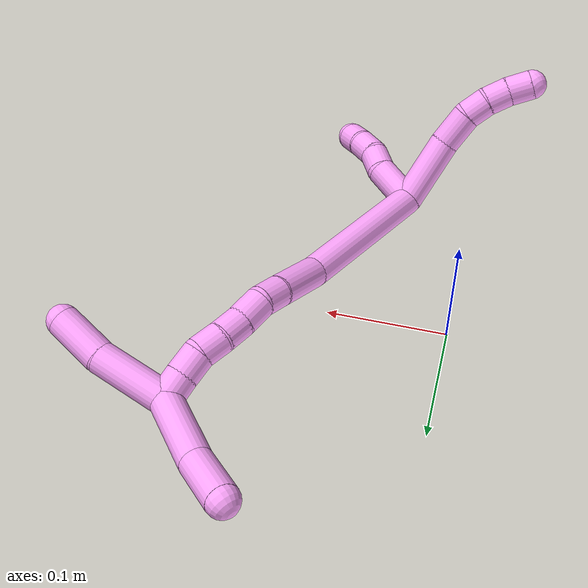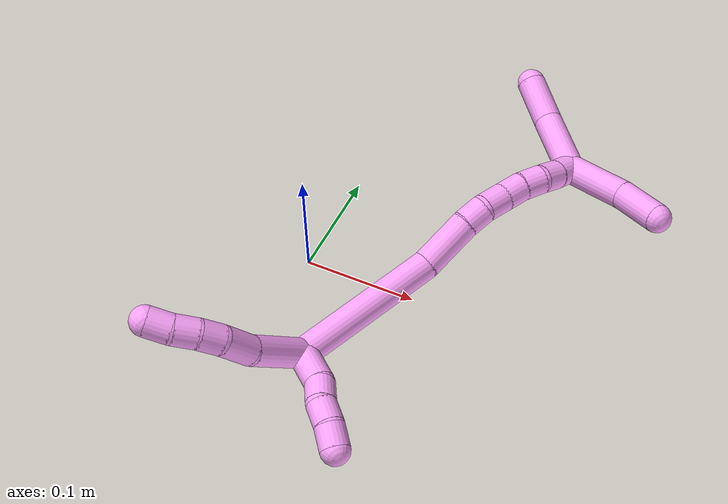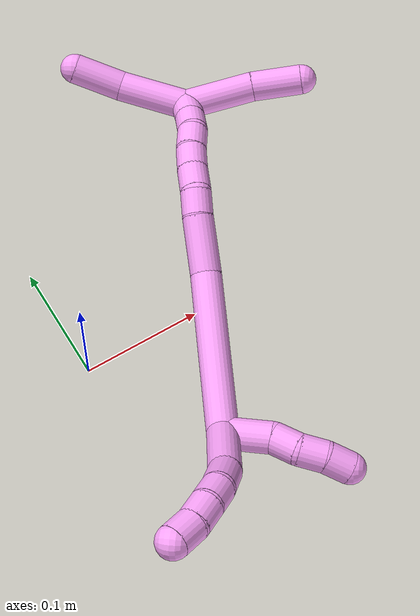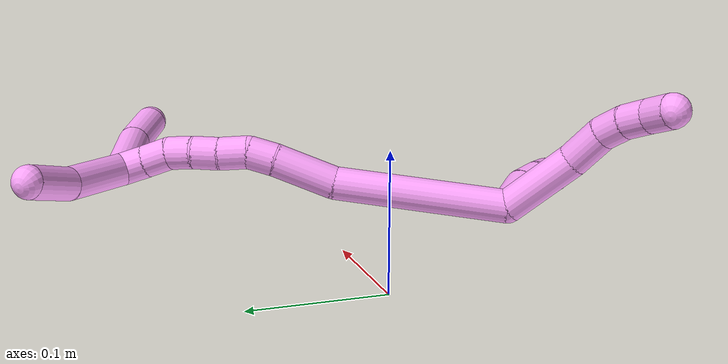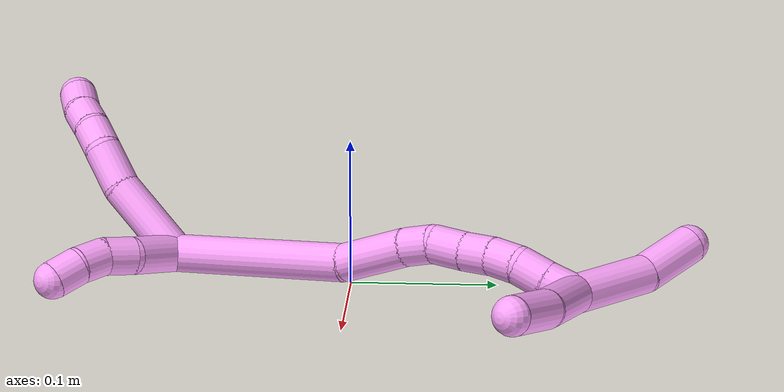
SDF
<sdf version="1.7">
 <world name="default">
  <model name="4">
   <static>0</static>
   <link name="4">
    <collision name="collision-cylinder-e_1_2_8">
     <pose>-0.026858 -0.010254 0.006085 1.03523 -1.15297 -0.70911</pose>
     <geometry><cylinder><radius>0.0125</radius><length>0.058771</length></cylinder></geometry>
     <surface>
      <friction><ode><mu>1.16</mu><mu2>1.16</mu2><slip1>0</slip1><slip2>0</slip2></ode></friction>
      <contact><ode><kp>1e+06</kp><kd>1</kd><max_vel>0</max_vel><min_depth>0.001</min_depth></ode></contact>
     </surface>
    </collision>
    <visual name="visual-cylinder-e_1_2_8">
     <pose>-0.026858 -0.010254 0.006085 1.03523 -1.15297 -0.70911</pose>
     <geometry><cylinder><radius>0.0125</radius><length>0.058771</length></cylinder></geometry>
     <material><ambient>1 0.65098 0.996078 1</ambient></material>
    </visual>
    <collision name="collision-cylinder-e_2_8_9">
     <pose>-0.068564 -0.023957 0.012523 1.46898 -1.34149 -1.24347</pose>
     <geometry><cylinder><radius>0.0125</radius><length>0.030496</length></cylinder></geometry>
     <surface>
      <friction><ode><mu>1.16</mu><mu2>1.16</mu2><slip1>0</slip1><slip2>0</slip2></ode></friction>
      <contact><ode><kp>1e+06</kp><kd>1</kd><max_vel>0</max_vel><min_depth>0.001</min_depth></ode></contact>
     </surface>
    </collision>
    <visual name="visual-cylinder-e_2_8_9">
     <pose>-0.068564 -0.023957 0.012523 1.46898 -1.34149 -1.24347</pose>
     <geometry><cylinder><radius>0.0125</radius><length>0.030496</length></cylinder></geometry>
     <material><ambient>1 0.65098 0.996078 1</ambient></material>
    </visual>
    <collision name="collision-cylinder-e_3_9_10">
     <pose>-0.092362 -0.031625 0.010941 2.0005 -1.09224 -1.51645</pose>
     <geometry><cylinder><radius>0.0125</radius><length>0.020164</length></cylinder></geometry>
     <surface>
      <friction><ode><mu>1.16</mu><mu2>1.16</mu2><slip1>0</slip1><slip2>0</slip2></ode></friction>
      <contact><ode><kp>1e+06</kp><kd>1</kd><max_vel>0</max_vel><min_depth>0.001</min_depth></ode></contact>
     </surface>
    </collision>
    <visual name="visual-cylinder-e_3_9_10">
     <pose>-0.092362 -0.031625 0.010941 2.0005 -1.09224 -1.51645</pose>
     <geometry><cylinder><radius>0.0125</radius><length>0.020164</length></cylinder></geometry>
     <material><ambient>1 0.65098 0.996078 1</ambient></material>
    </visual>
    <collision name="collision-cylinder-e_4_10_11">
     <pose>-0.109122 -0.041433 0.006059 2.05627 -0.890681 -1.33908</pose>
     <geometry><cylinder><radius>0.0125</radius><length>0.020091</length></cylinder></geometry>
     <surface>
      <friction><ode><mu>1.16</mu><mu2>1.16</mu2><slip1>0</slip1><slip2>0</slip2></ode></friction>
      <contact><ode><kp>1e+06</kp><kd>1</kd><max_vel>0</max_vel><min_depth>0.001</min_depth></ode></contact>
     </surface>
    </collision>
    <visual name="visual-cylinder-e_4_10_11">
     <pose>-0.109122 -0.041433 0.006059 2.05627 -0.890681 -1.33908</pose>
     <geometry><cylinder><radius>0.0125</radius><length>0.020091</length></cylinder></geometry>
     <material><ambient>1 0.65098 0.996078 1</ambient></material>
    </visual>
    <collision name="collision-cylinder-e_5_11_6">
     <pose>-0.124501 -0.051937 -0.001725 2.3479 -0.831901 -1.62339</pose>
     <geometry><cylinder><radius>0.0125</radius><length>0.020478</length></cylinder></geometry>
     <surface>
      <friction><ode><mu>1.16</mu><mu2>1.16</mu2><slip1>0</slip1><slip2>0</slip2></ode></friction>
      <contact><ode><kp>1e+06</kp><kd>1</kd><max_vel>0</max_vel><min_depth>0.001</min_depth></ode></contact>
     </surface>
    </collision>
    <visual name="visual-cylinder-e_5_11_6">
     <pose>-0.124501 -0.051937 -0.001725 2.3479 -0.831901 -1.62339</pose>
     <geometry><cylinder><radius>0.0125</radius><length>0.020478</length></cylinder></geometry>
     <material><ambient>1 0.65098 0.996078 1</ambient></material>
    </visual>
    <collision name="collision-cylinder-e_1_2_12">
     <pose>-0.000719 -0.000118 0.019259 0.006152 -0.037323 -0.000115</pose>
     <geometry><cylinder><radius>0.0125</radius><length>0.038546</length></cylinder></geometry>
     <surface>
      <friction><ode><mu>1.16</mu><mu2>1.16</mu2><slip1>0</slip1><slip2>0</slip2></ode></friction>
      <contact><ode><kp>1e+06</kp><kd>1</kd><max_vel>0</max_vel><min_depth>0.001</min_depth></ode></contact>
     </surface>
    </collision>
    <visual name="visual-cylinder-e_1_2_12">
     <pose>-0.000719 -0.000118 0.019259 0.006152 -0.037323 -0.000115</pose>
     <geometry><cylinder><radius>0.0125</radius><length>0.038546</length></cylinder></geometry>
     <material><ambient>1 0.65098 0.996078 1</ambient></material>
    </visual>
    <collision name="collision-cylinder-e_2_12_13">
     <pose>-0.00308 -0.003445 0.048243 0.318601 -0.158935 -0.025587</pose>
     <geometry><cylinder><radius>0.0125</radius><length>0.020742</length></cylinder></geometry>
     <surface>
      <friction><ode><mu>1.16</mu><mu2>1.16</mu2><slip1>0</slip1><slip2>0</slip2></ode></friction>
      <contact><ode><kp>1e+06</kp><kd>1</kd><max_vel>0</max_vel><min_depth>0.001</min_depth></ode></contact>
     </surface>
    </collision>
    <visual name="visual-cylinder-e_2_12_13">
     <pose>-0.00308 -0.003445 0.048243 0.318601 -0.158935 -0.025587</pose>
     <geometry><cylinder><radius>0.0125</radius><length>0.020742</length></cylinder></geometry>
     <material><ambient>1 0.65098 0.996078 1</ambient></material>
    </visual>
    <collision name="collision-cylinder-e_3_13_14">
     <pose>-0.003088 -0.008696 0.067898 0.203041 0.159754 0.016309</pose>
     <geometry><cylinder><radius>0.0125</radius><length>0.020536</length></cylinder></geometry>
     <surface>
      <friction><ode><mu>1.16</mu><mu2>1.16</mu2><slip1>0</slip1><slip2>0</slip2></ode></friction>
      <contact><ode><kp>1e+06</kp><kd>1</kd><max_vel>0</max_vel><min_depth>0.001</min_depth></ode></contact>
     </surface>
    </collision>
    <visual name="visual-cylinder-e_3_13_14">
     <pose>-0.003088 -0.008696 0.067898 0.203041 0.159754 0.016309</pose>
     <geometry><cylinder><radius>0.0125</radius><length>0.020536</length></cylinder></geometry>
     <material><ambient>1 0.65098 0.996078 1</ambient></material>
    </visual>
    <collision name="collision-cylinder-e_4_14_5">
     <pose>0.001433 -0.014457 0.086749 0.394691 0.290244 0.058428</pose>
     <geometry><cylinder><radius>0.0125</radius><length>0.020176</length></cylinder></geometry>
     <surface>
      <friction><ode><mu>1.16</mu><mu2>1.16</mu2><slip1>0</slip1><slip2>0</slip2></ode></friction>
      <contact><ode><kp>1e+06</kp><kd>1</kd><max_vel>0</max_vel><min_depth>0.001</min_depth></ode></contact>
     </surface>
    </collision>
    <visual name="visual-cylinder-e_4_14_5">
     <pose>0.001433 -0.014457 0.086749 0.394691 0.290244 0.058428</pose>
     <geometry><cylinder><radius>0.0125</radius><length>0.020176</length></cylinder></geometry>
     <material><ambient>1 0.65098 0.996078 1</ambient></material>
    </visual>
    <collision name="collision-cylinder-e_1_2_15">
     <pose>0.023586 0.058488 -0.014536 -1.81439 0.373029 -0.47364</pose>
     <geometry><cylinder><radius>0.0125</radius><length>0.129436</length></cylinder></geometry>
     <surface>
      <friction><ode><mu>1.16</mu><mu2>1.16</mu2><slip1>0</slip1><slip2>0</slip2></ode></friction>
      <contact><ode><kp>1e+06</kp><kd>1</kd><max_vel>0</max_vel><min_depth>0.001</min_depth></ode></contact>
     </surface>
    </collision>
    <visual name="visual-cylinder-e_1_2_15">
     <pose>0.023586 0.058488 -0.014536 -1.81439 0.373029 -0.47364</pose>
     <geometry><cylinder><radius>0.0125</radius><length>0.129436</length></cylinder></geometry>
     <material><ambient>1 0.65098 0.996078 1</ambient></material>
    </visual>
    <collision name="collision-cylinder-e_2_15_16">
     <pose>0.049735 0.139958 -0.03435 -1.79651 0.10828 -0.135886</pose>
     <geometry><cylinder><radius>0.0125</radius><length>0.047438</length></cylinder></geometry>
     <surface>
      <friction><ode><mu>1.16</mu><mu2>1.16</mu2><slip1>0</slip1><slip2>0</slip2></ode></friction>
      <contact><ode><kp>1e+06</kp><kd>1</kd><max_vel>0</max_vel><min_depth>0.001</min_depth></ode></contact>
     </surface>
    </collision>
    <visual name="visual-cylinder-e_2_15_16">
     <pose>0.049735 0.139958 -0.03435 -1.79651 0.10828 -0.135886</pose>
     <geometry><cylinder><radius>0.0125</radius><length>0.047438</length></cylinder></geometry>
     <material><ambient>1 0.65098 0.996078 1</ambient></material>
    </visual>
    <collision name="collision-cylinder-e_3_16_17">
     <pose>0.054659 0.172887 -0.041525 -1.75938 0.229009 -0.276295</pose>
     <geometry><cylinder><radius>0.0125</radius><length>0.020796</length></cylinder></geometry>
     <surface>
      <friction><ode><mu>1.16</mu><mu2>1.16</mu2><slip1>0</slip1><slip2>0</slip2></ode></friction>
      <contact><ode><kp>1e+06</kp><kd>1</kd><max_vel>0</max_vel><min_depth>0.001</min_depth></ode></contact>
     </surface>
    </collision>
    <visual name="visual-cylinder-e_3_16_17">
     <pose>0.054659 0.172887 -0.041525 -1.75938 0.229009 -0.276295</pose>
     <geometry><cylinder><radius>0.0125</radius><length>0.020796</length></cylinder></geometry>
     <material><ambient>1 0.65098 0.996078 1</ambient></material>
    </visual>
    <collision name="collision-cylinder-e_4_17_18">
     <pose>0.06278 0.191877 -0.046475 -1.89628 0.54306 -0.739877</pose>
     <geometry><cylinder><radius>0.0125</radius><length>0.022294</length></cylinder></geometry>
     <surface>
      <friction><ode><mu>1.16</mu><mu2>1.16</mu2><slip1>0</slip1><slip2>0</slip2></ode></friction>
      <contact><ode><kp>1e+06</kp><kd>1</kd><max_vel>0</max_vel><min_depth>0.001</min_depth></ode></contact>
     </surface>
    </collision>
    <visual name="visual-cylinder-e_4_17_18">
     <pose>0.06278 0.191877 -0.046475 -1.89628 0.54306 -0.739877</pose>
     <geometry><cylinder><radius>0.0125</radius><length>0.022294</length></cylinder></geometry>
     <material><ambient>1 0.65098 0.996078 1</ambient></material>
    </visual>
    <collision name="collision-cylinder-e_5_18_19">
     <pose>0.073125 0.209579 -0.051567 -1.80216 0.475822 -0.594404</pose>
     <geometry><cylinder><radius>0.0125</radius><length>0.020018</length></cylinder></geometry>
     <surface>
      <friction><ode><mu>1.16</mu><mu2>1.16</mu2><slip1>0</slip1><slip2>0</slip2></ode></friction>
      <contact><ode><kp>1e+06</kp><kd>1</kd><max_vel>0</max_vel><min_depth>0.001</min_depth></ode></contact>
     </surface>
    </collision>
    <visual name="visual-cylinder-e_5_18_19">
     <pose>0.073125 0.209579 -0.051567 -1.80216 0.475822 -0.594404</pose>
     <geometry><cylinder><radius>0.0125</radius><length>0.020018</length></cylinder></geometry>
     <material><ambient>1 0.65098 0.996078 1</ambient></material>
    </visual>
    <collision name="collision-cylinder-e_6_19_20">
     <pose>0.083348 0.22644 -0.054618 -1.69344 0.598811 -0.671695</pose>
     <geometry><cylinder><radius>0.0125</radius><length>0.020007</length></cylinder></geometry>
     <surface>
      <friction><ode><mu>1.16</mu><mu2>1.16</mu2><slip1>0</slip1><slip2>0</slip2></ode></friction>
      <contact><ode><kp>1e+06</kp><kd>1</kd><max_vel>0</max_vel><min_depth>0.001</min_depth></ode></contact>
     </surface>
    </collision>
    <visual name="visual-cylinder-e_6_19_20">
     <pose>0.083348 0.22644 -0.054618 -1.69344 0.598811 -0.671695</pose>
     <geometry><cylinder><radius>0.0125</radius><length>0.020007</length></cylinder></geometry>
     <material><ambient>1 0.65098 0.996078 1</ambient></material>
    </visual>
    <collision name="collision-cylinder-e_7_20_21">
     <pose>0.096217 0.240894 -0.058571 -2.0105 0.808003 -1.18554</pose>
     <geometry><cylinder><radius>0.0125</radius><length>0.020004</length></cylinder></geometry>
     <surface>
      <friction><ode><mu>1.16</mu><mu2>1.16</mu2><slip1>0</slip1><slip2>0</slip2></ode></friction>
      <contact><ode><kp>1e+06</kp><kd>1</kd><max_vel>0</max_vel><min_depth>0.001</min_depth></ode></contact>
     </surface>
    </collision>
    <visual name="visual-cylinder-e_7_20_21">
     <pose>0.096217 0.240894 -0.058571 -2.0105 0.808003 -1.18554</pose>
     <geometry><cylinder><radius>0.0125</radius><length>0.020004</length></cylinder></geometry>
     <material><ambient>1 0.65098 0.996078 1</ambient></material>
    </visual>
    <collision name="collision-cylinder-e_8_21_1">
     <pose>0.110301 0.253532 -0.065026 -2.07386 0.754739 -1.18134</pose>
     <geometry><cylinder><radius>0.0125</radius><length>0.020006</length></cylinder></geometry>
     <surface>
      <friction><ode><mu>1.16</mu><mu2>1.16</mu2><slip1>0</slip1><slip2>0</slip2></ode></friction>
      <contact><ode><kp>1e+06</kp><kd>1</kd><max_vel>0</max_vel><min_depth>0.001</min_depth></ode></contact>
     </surface>
    </collision>
    <visual name="visual-cylinder-e_8_21_1">
     <pose>0.110301 0.253532 -0.065026 -2.07386 0.754739 -1.18134</pose>
     <geometry><cylinder><radius>0.0125</radius><length>0.020006</length></cylinder></geometry>
     <material><ambient>1 0.65098 0.996078 1</ambient></material>
    </visual>
    <collision name="collision-cylinder-e_1_1_22">
     <pose>0.122184 0.269301 -0.041443 -0.333426 0.173645 -0.029292</pose>
     <geometry><cylinder><radius>0.0125</radius><length>0.058225</length></cylinder></geometry>
     <surface>
      <friction><ode><mu>1.16</mu><mu2>1.16</mu2><slip1>0</slip1><slip2>0</slip2></ode></friction>
      <contact><ode><kp>1e+06</kp><kd>1</kd><max_vel>0</max_vel><min_depth>0.001</min_depth></ode></contact>
     </surface>
    </collision>
    <visual name="visual-cylinder-e_1_1_22">
     <pose>0.122184 0.269301 -0.041443 -0.333426 0.173645 -0.029292</pose>
     <geometry><cylinder><radius>0.0125</radius><length>0.058225</length></cylinder></geometry>
     <material><ambient>1 0.65098 0.996078 1</ambient></material>
    </visual>
    <collision name="collision-cylinder-e_2_22_4">
     <pose>0.12843 0.282606 0.006133 -0.18914 0.05827 -0.005529</pose>
     <geometry><cylinder><radius>0.0125</radius><length>0.041775</length></cylinder></geometry>
     <surface>
      <friction><ode><mu>1.16</mu><mu2>1.16</mu2><slip1>0</slip1><slip2>0</slip2></ode></friction>
      <contact><ode><kp>1e+06</kp><kd>1</kd><max_vel>0</max_vel><min_depth>0.001</min_depth></ode></contact>
     </surface>
    </collision>
    <visual name="visual-cylinder-e_2_22_4">
     <pose>0.12843 0.282606 0.006133 -0.18914 0.05827 -0.005529</pose>
     <geometry><cylinder><radius>0.0125</radius><length>0.041775</length></cylinder></geometry>
     <material><ambient>1 0.65098 0.996078 1</ambient></material>
    </visual>
    <collision name="collision-cylinder-e_1_1_23">
     <pose>0.115228 0.266551 -0.09668 -2.91003 -0.066516 0.557259</pose>
     <geometry><cylinder><radius>0.0125</radius><length>0.057955</length></cylinder></geometry>
     <surface>
      <friction><ode><mu>1.16</mu><mu2>1.16</mu2><slip1>0</slip1><slip2>0</slip2></ode></friction>
      <contact><ode><kp>1e+06</kp><kd>1</kd><max_vel>0</max_vel><min_depth>0.001</min_depth></ode></contact>
     </surface>
    </collision>
    <visual name="visual-cylinder-e_1_1_23">
     <pose>0.115228 0.266551 -0.09668 -2.91003 -0.066516 0.557259</pose>
     <geometry><cylinder><radius>0.0125</radius><length>0.057955</length></cylinder></geometry>
     <material><ambient>1 0.65098 0.996078 1</ambient></material>
    </visual>
    <collision name="collision-cylinder-e_2_23_3">
     <pose>0.107045 0.279059 -0.144014 -2.84466 -0.302221 1.58873</pose>
     <geometry><cylinder><radius>0.0125</radius><length>0.042045</length></cylinder></geometry>
     <surface>
      <friction><ode><mu>1.16</mu><mu2>1.16</mu2><slip1>0</slip1><slip2>0</slip2></ode></friction>
      <contact><ode><kp>1e+06</kp><kd>1</kd><max_vel>0</max_vel><min_depth>0.001</min_depth></ode></contact>
     </surface>
    </collision>
    <visual name="visual-cylinder-e_2_23_3">
     <pose>0.107045 0.279059 -0.144014 -2.84466 -0.302221 1.58873</pose>
     <geometry><cylinder><radius>0.0125</radius><length>0.042045</length></cylinder></geometry>
     <material><ambient>1 0.65098 0.996078 1</ambient></material>
    </visual>
    <collision name="collision-sphere-3">
     <pose>0.100787 0.284931 -0.163205 0 -0 0</pose>
     <geometry><sphere><radius>0.0125</radius></sphere></geometry>
     <surface>
      <friction><ode><mu>1.16</mu><mu2>1.16</mu2><slip1>0</slip1><slip2>0</slip2></ode></friction>
      <contact><ode><kp>1e+06</kp><kd>1</kd><max_vel>0</max_vel><min_depth>0.001</min_depth></ode></contact>
     </surface>
    </collision>
    <visual name="visual-sphere-3">
     <pose>0.100787 0.284931 -0.163205 0 -0 0</pose>
     <geometry><sphere><radius>0.0125</radius></sphere></geometry>
     <material><ambient>1 0.65098 0.996078 1</ambient></material>
    </visual>
    <collision name="collision-sphere-23">
     <pose>0.113302 0.273187 -0.124822 0 -0 0</pose>
     <geometry><sphere><radius>0.0125</radius></sphere></geometry>
     <surface>
      <friction><ode><mu>1.16</mu><mu2>1.16</mu2><slip1>0</slip1><slip2>0</slip2></ode></friction>
      <contact><ode><kp>1e+06</kp><kd>1</kd><max_vel>0</max_vel><min_depth>0.001</min_depth></ode></contact>
     </surface>
    </collision>
    <visual name="visual-sphere-23">
     <pose>0.113302 0.273187 -0.124822 0 -0 0</pose>
     <geometry><sphere><radius>0.0125</radius></sphere></geometry>
     <material><ambient>1 0.65098 0.996078 1</ambient></material>
    </visual>
    <collision name="collision-sphere-4">
     <pose>0.129647 0.286526 0.026612 0 -0 0</pose>
     <geometry><sphere><radius>0.0125</radius></sphere></geometry>
     <surface>
      <friction><ode><mu>1.16</mu><mu2>1.16</mu2><slip1>0</slip1><slip2>0</slip2></ode></friction>
      <contact><ode><kp>1e+06</kp><kd>1</kd><max_vel>0</max_vel><min_depth>0.001</min_depth></ode></contact>
     </surface>
    </collision>
    <visual name="visual-sphere-4">
     <pose>0.129647 0.286526 0.026612 0 -0 0</pose>
     <geometry><sphere><radius>0.0125</radius></sphere></geometry>
     <material><ambient>1 0.65098 0.996078 1</ambient></material>
    </visual>
    <collision name="collision-sphere-22">
     <pose>0.127214 0.278685 -0.014347 0 -0 0</pose>
     <geometry><sphere><radius>0.0125</radius></sphere></geometry>
     <surface>
      <friction><ode><mu>1.16</mu><mu2>1.16</mu2><slip1>0</slip1><slip2>0</slip2></ode></friction>
      <contact><ode><kp>1e+06</kp><kd>1</kd><max_vel>0</max_vel><min_depth>0.001</min_depth></ode></contact>
     </surface>
    </collision>
    <visual name="visual-sphere-22">
     <pose>0.127214 0.278685 -0.014347 0 -0 0</pose>
     <geometry><sphere><radius>0.0125</radius></sphere></geometry>
     <material><ambient>1 0.65098 0.996078 1</ambient></material>
    </visual>
    <collision name="collision-sphere-1">
     <pose>0.117154 0.259916 -0.068539 0 -0 0</pose>
     <geometry><sphere><radius>0.0125</radius></sphere></geometry>
     <surface>
      <friction><ode><mu>1.16</mu><mu2>1.16</mu2><slip1>0</slip1><slip2>0</slip2></ode></friction>
      <contact><ode><kp>1e+06</kp><kd>1</kd><max_vel>0</max_vel><min_depth>0.001</min_depth></ode></contact>
     </surface>
    </collision>
    <visual name="visual-sphere-1">
     <pose>0.117154 0.259916 -0.068539 0 -0 0</pose>
     <geometry><sphere><radius>0.0125</radius></sphere></geometry>
     <material><ambient>1 0.65098 0.996078 1</ambient></material>
    </visual>
    <collision name="collision-sphere-21">
     <pose>0.103448 0.247148 -0.061513 0 -0 0</pose>
     <geometry><sphere><radius>0.0125</radius></sphere></geometry>
     <surface>
      <friction><ode><mu>1.16</mu><mu2>1.16</mu2><slip1>0</slip1><slip2>0</slip2></ode></friction>
      <contact><ode><kp>1e+06</kp><kd>1</kd><max_vel>0</max_vel><min_depth>0.001</min_depth></ode></contact>
     </surface>
    </collision>
    <visual name="visual-sphere-21">
     <pose>0.103448 0.247148 -0.061513 0 -0 0</pose>
     <geometry><sphere><radius>0.0125</radius></sphere></geometry>
     <material><ambient>1 0.65098 0.996078 1</ambient></material>
    </visual>
    <collision name="collision-sphere-6">
     <pose>-0.13207 -0.056853 -0.00656 0 -0 0</pose>
     <geometry><sphere><radius>0.0125</radius></sphere></geometry>
     <surface>
      <friction><ode><mu>1.16</mu><mu2>1.16</mu2><slip1>0</slip1><slip2>0</slip2></ode></friction>
      <contact><ode><kp>1e+06</kp><kd>1</kd><max_vel>0</max_vel><min_depth>0.001</min_depth></ode></contact>
     </surface>
    </collision>
    <visual name="visual-sphere-6">
     <pose>-0.13207 -0.056853 -0.00656 0 -0 0</pose>
     <geometry><sphere><radius>0.0125</radius></sphere></geometry>
     <material><ambient>1 0.65098 0.996078 1</ambient></material>
    </visual>
    <collision name="collision-sphere-11">
     <pose>-0.116932 -0.047021 0.003111 0 -0 0</pose>
     <geometry><sphere><radius>0.0125</radius></sphere></geometry>
     <surface>
      <friction><ode><mu>1.16</mu><mu2>1.16</mu2><slip1>0</slip1><slip2>0</slip2></ode></friction>
      <contact><ode><kp>1e+06</kp><kd>1</kd><max_vel>0</max_vel><min_depth>0.001</min_depth></ode></contact>
     </surface>
    </collision>
    <visual name="visual-sphere-11">
     <pose>-0.116932 -0.047021 0.003111 0 -0 0</pose>
     <geometry><sphere><radius>0.0125</radius></sphere></geometry>
     <material><ambient>1 0.65098 0.996078 1</ambient></material>
    </visual>
    <collision name="collision-sphere-10">
     <pose>-0.101312 -0.035846 0.009007 0 -0 0</pose>
     <geometry><sphere><radius>0.0125</radius></sphere></geometry>
     <surface>
      <friction><ode><mu>1.16</mu><mu2>1.16</mu2><slip1>0</slip1><slip2>0</slip2></ode></friction>
      <contact><ode><kp>1e+06</kp><kd>1</kd><max_vel>0</max_vel><min_depth>0.001</min_depth></ode></contact>
     </surface>
    </collision>
    <visual name="visual-sphere-10">
     <pose>-0.101312 -0.035846 0.009007 0 -0 0</pose>
     <geometry><sphere><radius>0.0125</radius></sphere></geometry>
     <material><ambient>1 0.65098 0.996078 1</ambient></material>
    </visual>
    <collision name="collision-sphere-9">
     <pose>-0.083413 -0.027405 0.012875 0 -0 0</pose>
     <geometry><sphere><radius>0.0125</radius></sphere></geometry>
     <surface>
      <friction><ode><mu>1.16</mu><mu2>1.16</mu2><slip1>0</slip1><slip2>0</slip2></ode></friction>
      <contact><ode><kp>1e+06</kp><kd>1</kd><max_vel>0</max_vel><min_depth>0.001</min_depth></ode></contact>
     </surface>
    </collision>
    <visual name="visual-sphere-9">
     <pose>-0.083413 -0.027405 0.012875 0 -0 0</pose>
     <geometry><sphere><radius>0.0125</radius></sphere></geometry>
     <material><ambient>1 0.65098 0.996078 1</ambient></material>
    </visual>
    <collision name="collision-sphere-2">
     <geometry><sphere><radius>0.0125</radius></sphere></geometry>
     <surface>
      <friction><ode><mu>1.16</mu><mu2>1.16</mu2><slip1>0</slip1><slip2>0</slip2></ode></friction>
      <contact><ode><kp>1e+06</kp><kd>1</kd><max_vel>0</max_vel><min_depth>0.001</min_depth></ode></contact>
     </surface>
    </collision>
    <visual name="visual-sphere-2">
     <geometry><sphere><radius>0.0125</radius></sphere></geometry>
     <material><ambient>1 0.65098 0.996078 1</ambient></material>
    </visual>
    <collision name="collision-sphere-19">
     <pose>0.077709 0.218239 -0.053607 0 -0 0</pose>
     <geometry><sphere><radius>0.0125</radius></sphere></geometry>
     <surface>
      <friction><ode><mu>1.16</mu><mu2>1.16</mu2><slip1>0</slip1><slip2>0</slip2></ode></friction>
      <contact><ode><kp>1e+06</kp><kd>1</kd><max_vel>0</max_vel><min_depth>0.001</min_depth></ode></contact>
     </surface>
    </collision>
    <visual name="visual-sphere-19">
     <pose>0.077709 0.218239 -0.053607 0 -0 0</pose>
     <geometry><sphere><radius>0.0125</radius></sphere></geometry>
     <material><ambient>1 0.65098 0.996078 1</ambient></material>
    </visual>
    <collision name="collision-sphere-8">
     <pose>-0.053716 -0.020509 0.01217 0 -0 0</pose>
     <geometry><sphere><radius>0.0125</radius></sphere></geometry>
     <surface>
      <friction><ode><mu>1.16</mu><mu2>1.16</mu2><slip1>0</slip1><slip2>0</slip2></ode></friction>
      <contact><ode><kp>1e+06</kp><kd>1</kd><max_vel>0</max_vel><min_depth>0.001</min_depth></ode></contact>
     </surface>
    </collision>
    <visual name="visual-sphere-8">
     <pose>-0.053716 -0.020509 0.01217 0 -0 0</pose>
     <geometry><sphere><radius>0.0125</radius></sphere></geometry>
     <material><ambient>1 0.65098 0.996078 1</ambient></material>
    </visual>
    <collision name="collision-sphere-12">
     <pose>-0.001438 -0.000237 0.038519 0 -0 0</pose>
     <geometry><sphere><radius>0.0125</radius></sphere></geometry>
     <surface>
      <friction><ode><mu>1.16</mu><mu2>1.16</mu2><slip1>0</slip1><slip2>0</slip2></ode></friction>
      <contact><ode><kp>1e+06</kp><kd>1</kd><max_vel>0</max_vel><min_depth>0.001</min_depth></ode></contact>
     </surface>
    </collision>
    <visual name="visual-sphere-12">
     <pose>-0.001438 -0.000237 0.038519 0 -0 0</pose>
     <geometry><sphere><radius>0.0125</radius></sphere></geometry>
     <material><ambient>1 0.65098 0.996078 1</ambient></material>
    </visual>
    <collision name="collision-sphere-13">
     <pose>-0.004721 -0.006652 0.057968 0 -0 0</pose>
     <geometry><sphere><radius>0.0125</radius></sphere></geometry>
     <surface>
      <friction><ode><mu>1.16</mu><mu2>1.16</mu2><slip1>0</slip1><slip2>0</slip2></ode></friction>
      <contact><ode><kp>1e+06</kp><kd>1</kd><max_vel>0</max_vel><min_depth>0.001</min_depth></ode></contact>
     </surface>
    </collision>
    <visual name="visual-sphere-13">
     <pose>-0.004721 -0.006652 0.057968 0 -0 0</pose>
     <geometry><sphere><radius>0.0125</radius></sphere></geometry>
     <material><ambient>1 0.65098 0.996078 1</ambient></material>
    </visual>
    <collision name="collision-sphere-14">
     <pose>-0.001454 -0.010741 0.077827 0 -0 0</pose>
     <geometry><sphere><radius>0.0125</radius></sphere></geometry>
     <surface>
      <friction><ode><mu>1.16</mu><mu2>1.16</mu2><slip1>0</slip1><slip2>0</slip2></ode></friction>
      <contact><ode><kp>1e+06</kp><kd>1</kd><max_vel>0</max_vel><min_depth>0.001</min_depth></ode></contact>
     </surface>
    </collision>
    <visual name="visual-sphere-14">
     <pose>-0.001454 -0.010741 0.077827 0 -0 0</pose>
     <geometry><sphere><radius>0.0125</radius></sphere></geometry>
     <material><ambient>1 0.65098 0.996078 1</ambient></material>
    </visual>
    <collision name="collision-sphere-5">
     <pose>0.00432 -0.018174 0.095672 0 -0 0</pose>
     <geometry><sphere><radius>0.0125</radius></sphere></geometry>
     <surface>
      <friction><ode><mu>1.16</mu><mu2>1.16</mu2><slip1>0</slip1><slip2>0</slip2></ode></friction>
      <contact><ode><kp>1e+06</kp><kd>1</kd><max_vel>0</max_vel><min_depth>0.001</min_depth></ode></contact>
     </surface>
    </collision>
    <visual name="visual-sphere-5">
     <pose>0.00432 -0.018174 0.095672 0 -0 0</pose>
     <geometry><sphere><radius>0.0125</radius></sphere></geometry>
     <material><ambient>1 0.65098 0.996078 1</ambient></material>
    </visual>
    <collision name="collision-sphere-15">
     <pose>0.047172 0.116976 -0.029072 0 -0 0</pose>
     <geometry><sphere><radius>0.0125</radius></sphere></geometry>
     <surface>
      <friction><ode><mu>1.16</mu><mu2>1.16</mu2><slip1>0</slip1><slip2>0</slip2></ode></friction>
      <contact><ode><kp>1e+06</kp><kd>1</kd><max_vel>0</max_vel><min_depth>0.001</min_depth></ode></contact>
     </surface>
    </collision>
    <visual name="visual-sphere-15">
     <pose>0.047172 0.116976 -0.029072 0 -0 0</pose>
     <geometry><sphere><radius>0.0125</radius></sphere></geometry>
     <material><ambient>1 0.65098 0.996078 1</ambient></material>
    </visual>
    <collision name="collision-sphere-16">
     <pose>0.052298 0.16294 -0.039627 0 -0 0</pose>
     <geometry><sphere><radius>0.0125</radius></sphere></geometry>
     <surface>
      <friction><ode><mu>1.16</mu><mu2>1.16</mu2><slip1>0</slip1><slip2>0</slip2></ode></friction>
      <contact><ode><kp>1e+06</kp><kd>1</kd><max_vel>0</max_vel><min_depth>0.001</min_depth></ode></contact>
     </surface>
    </collision>
    <visual name="visual-sphere-16">
     <pose>0.052298 0.16294 -0.039627 0 -0 0</pose>
     <geometry><sphere><radius>0.0125</radius></sphere></geometry>
     <material><ambient>1 0.65098 0.996078 1</ambient></material>
    </visual>
    <collision name="collision-sphere-17">
     <pose>0.057019 0.182835 -0.043424 0 -0 0</pose>
     <geometry><sphere><radius>0.0125</radius></sphere></geometry>
     <surface>
      <friction><ode><mu>1.16</mu><mu2>1.16</mu2><slip1>0</slip1><slip2>0</slip2></ode></friction>
      <contact><ode><kp>1e+06</kp><kd>1</kd><max_vel>0</max_vel><min_depth>0.001</min_depth></ode></contact>
     </surface>
    </collision>
    <visual name="visual-sphere-17">
     <pose>0.057019 0.182835 -0.043424 0 -0 0</pose>
     <geometry><sphere><radius>0.0125</radius></sphere></geometry>
     <material><ambient>1 0.65098 0.996078 1</ambient></material>
    </visual>
    <collision name="collision-sphere-18">
     <pose>0.06854 0.200919 -0.049527 0 -0 0</pose>
     <geometry><sphere><radius>0.0125</radius></sphere></geometry>
     <surface>
      <friction><ode><mu>1.16</mu><mu2>1.16</mu2><slip1>0</slip1><slip2>0</slip2></ode></friction>
      <contact><ode><kp>1e+06</kp><kd>1</kd><max_vel>0</max_vel><min_depth>0.001</min_depth></ode></contact>
     </surface>
    </collision>
    <visual name="visual-sphere-18">
     <pose>0.06854 0.200919 -0.049527 0 -0 0</pose>
     <geometry><sphere><radius>0.0125</radius></sphere></geometry>
     <material><ambient>1 0.65098 0.996078 1</ambient></material>
    </visual>
    <collision name="collision-sphere-20">
     <pose>0.088986 0.234641 -0.055629 0 -0 0</pose>
     <geometry><sphere><radius>0.0125</radius></sphere></geometry>
     <surface>
      <friction><ode><mu>1.16</mu><mu2>1.16</mu2><slip1>0</slip1><slip2>0</slip2></ode></friction>
      <contact><ode><kp>1e+06</kp><kd>1</kd><max_vel>0</max_vel><min_depth>0.001</min_depth></ode></contact>
     </surface>
    </collision>
    <visual name="visual-sphere-20">
     <pose>0.088986 0.234641 -0.055629 0 -0 0</pose>
     <geometry><sphere><radius>0.0125</radius></sphere></geometry>
     <material><ambient>1 0.65098 0.996078 1</ambient></material>
    </visual>
    <inertial>
     <pose>0.037959 0.121271 -0.023852 0 -0 0</pose>
     <mass>0.75</mass>
     <inertia>
      <ixx>0.000151</ixx>
      <ixy>0</ixy>
      <ixz>0</ixz>
      <iyy>-2.4e-05</iyy>
      <iyz>0</iyz>
      <izz>-0.000236</izz>
     </inertia>
    </inertial>
   </link>
   <pose>0.055079 -0.113032 0.036839 1.29059 1.03053 0.633283</pose>
  </model>
 </world>
</sdf>
